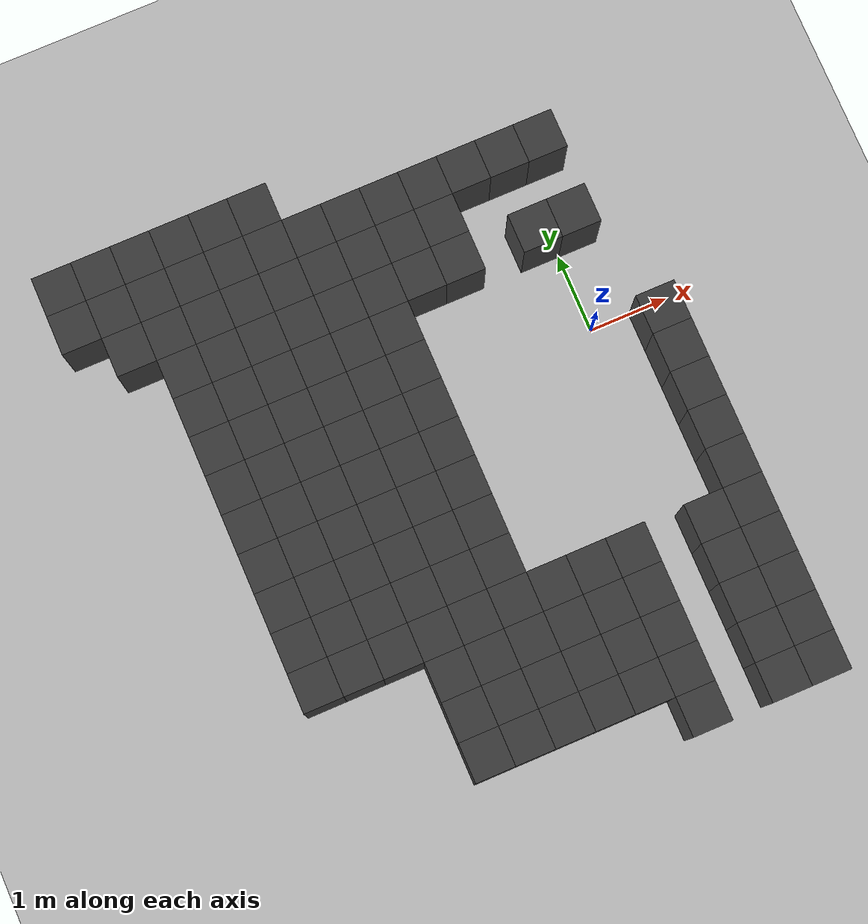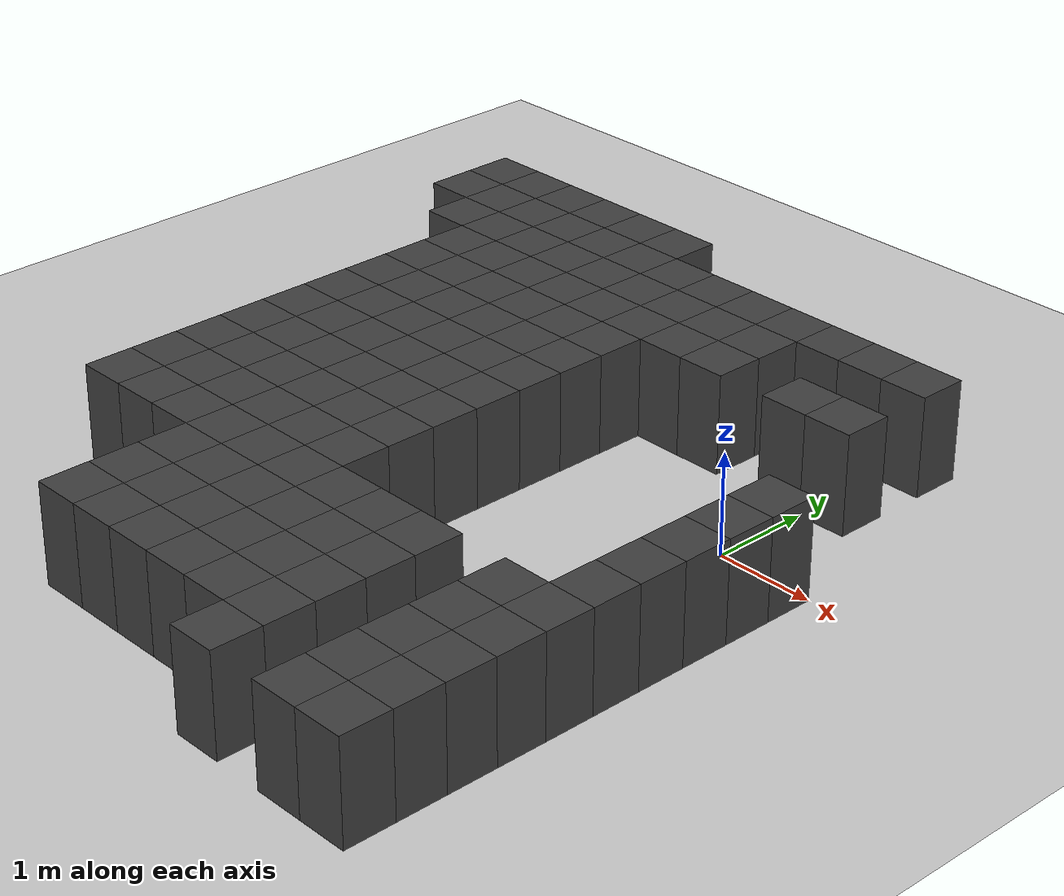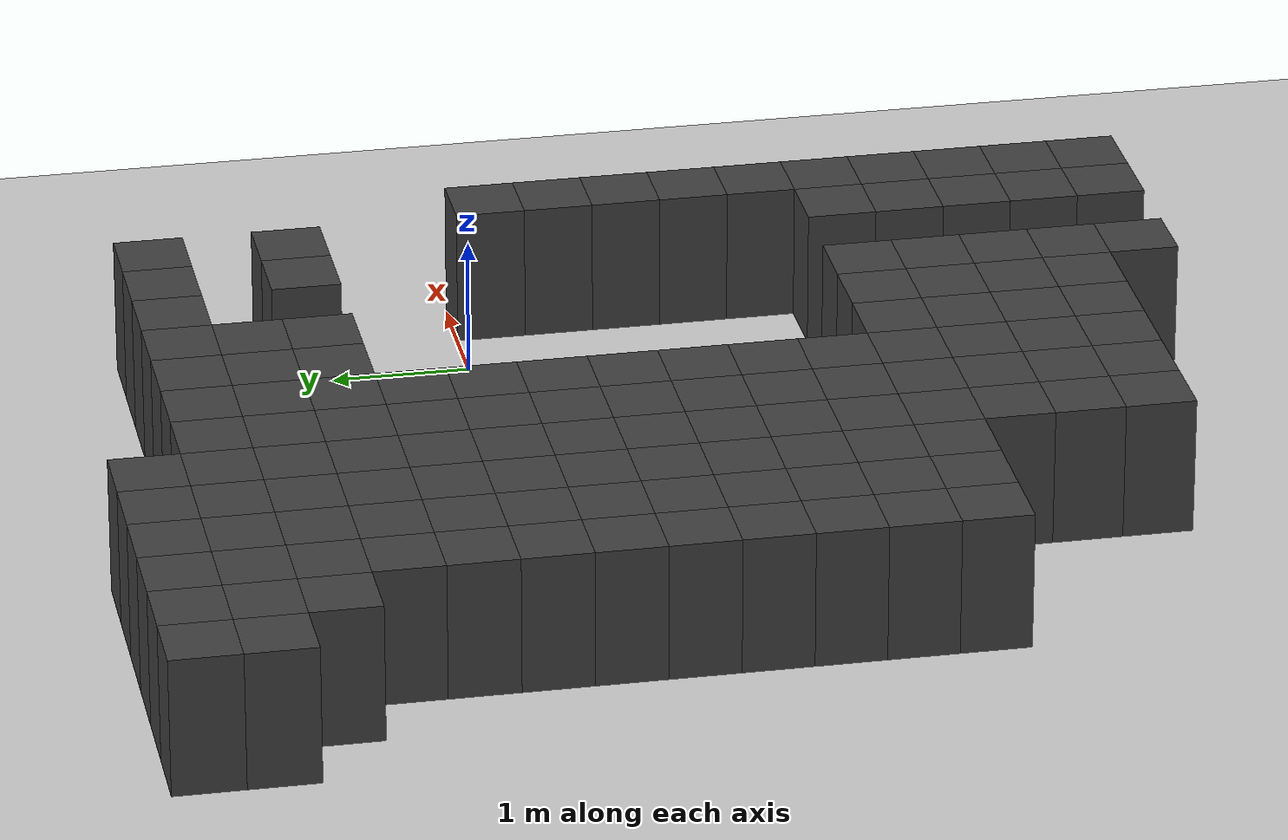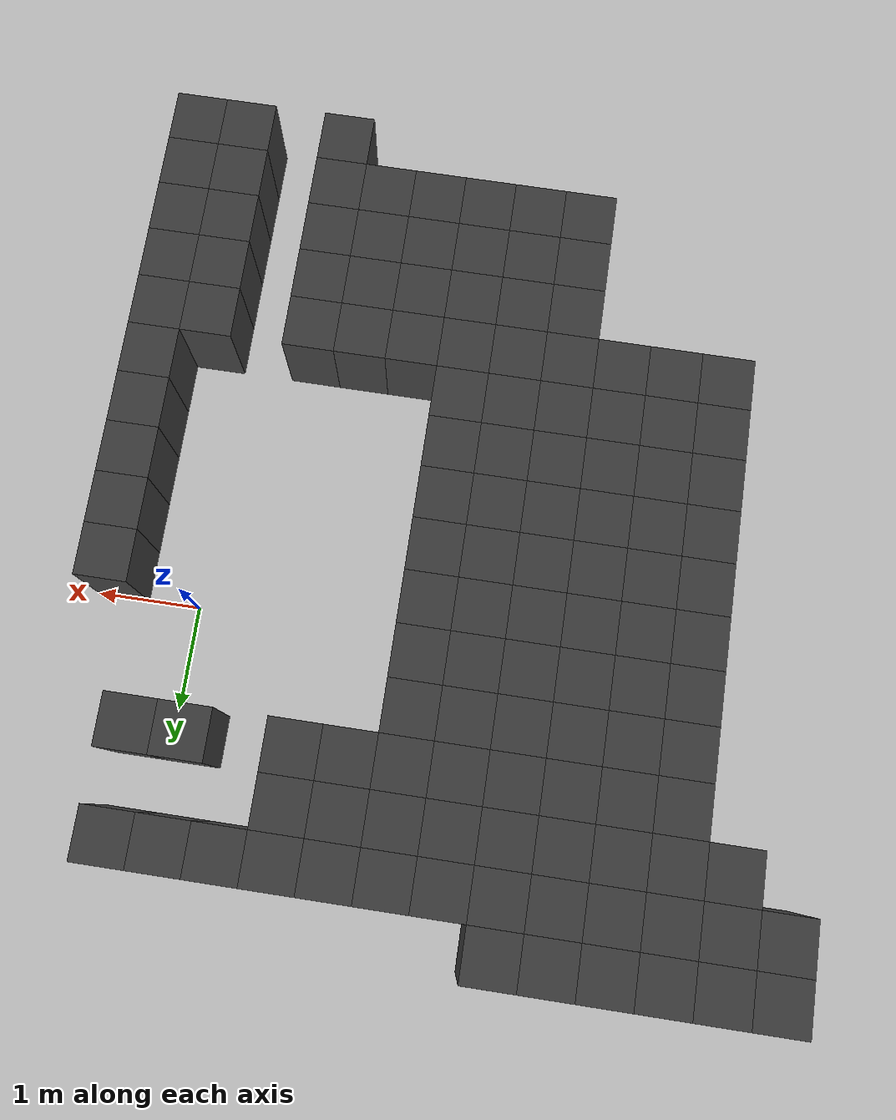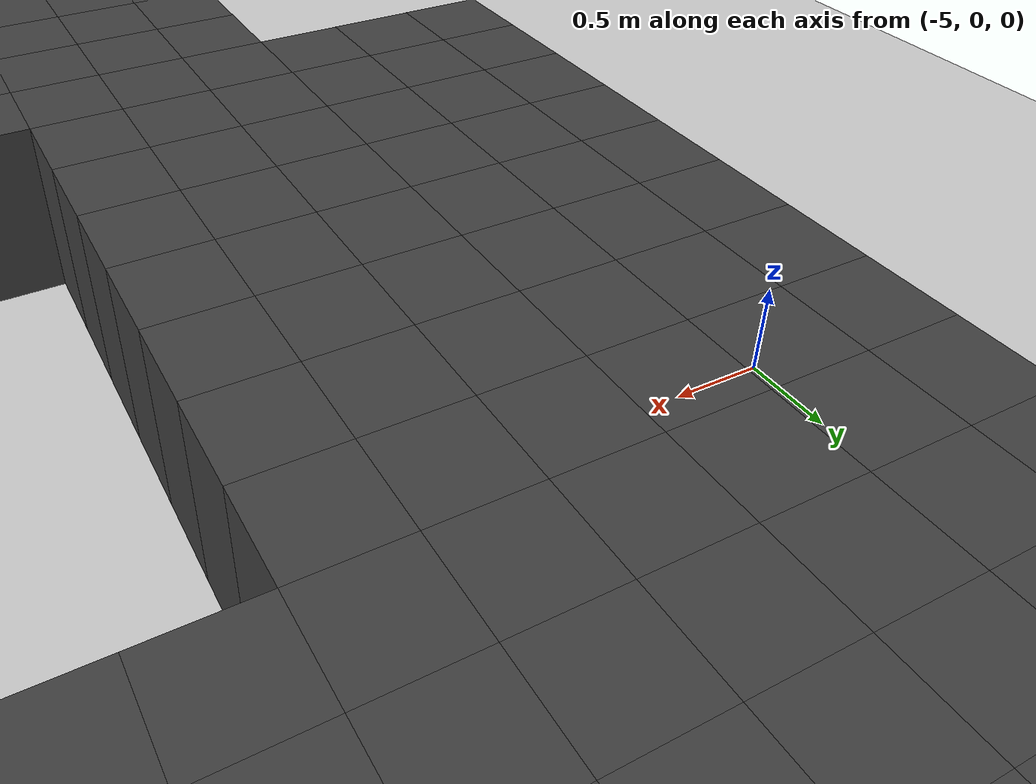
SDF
<sdf version="1.7">
 <world name="map_12818">
  <model name="ground_plane">
   <static>true</static>
   <link name="link">
    <collision name="collision">
     <geometry><plane><normal>0 0 1</normal><size>200 200</size></plane></geometry>
    </collision>
    <visual name="visual">
     <geometry><plane><normal>0 0 1</normal><size>200 200</size></plane></geometry>
     <material><ambient>0.8 0.8 0.8 1</ambient><diffuse>0.8 0.8 0.8 1</diffuse></material>
    </visual>
   </link>
  </model>
  <model name="maze_environment">
   <static>true</static>
   <link name="wall_895">
    <pose>-5.750 2.750 0.500 0 0 0</pose>
    <collision name="col"><geometry><box><size>0.5 0.5 1.0</size></box></geometry></collision>
    <visual name="vis">
     <geometry><box><size>0.5 0.5 1.0</size></box></geometry>
     <material><ambient>0.15 0.15 0.15 1</ambient><diffuse>0.25 0.25 0.25 1</diffuse></material>
    </visual>
   </link>
   <link name="wall_896">
    <pose>-5.250 2.750 0.500 0 0 0</pose>
    <collision name="col"><geometry><box><size>0.5 0.5 1.0</size></box></geometry></collision>
    <visual name="vis">
     <geometry><box><size>0.5 0.5 1.0</size></box></geometry>
     <material><ambient>0.15 0.15 0.15 1</ambient><diffuse>0.25 0.25 0.25 1</diffuse></material>
    </visual>
   </link>
   <link name="wall_897">
    <pose>-4.750 2.750 0.500 0 0 0</pose>
    <collision name="col"><geometry><box><size>0.5 0.5 1.0</size></box></geometry></collision>
    <visual name="vis">
     <geometry><box><size>0.5 0.5 1.0</size></box></geometry>
     <material><ambient>0.15 0.15 0.15 1</ambient><diffuse>0.25 0.25 0.25 1</diffuse></material>
    </visual>
   </link>
   <link name="wall_898">
    <pose>-4.250 2.750 0.500 0 0 0</pose>
    <collision name="col"><geometry><box><size>0.5 0.5 1.0</size></box></geometry></collision>
    <visual name="vis">
     <geometry><box><size>0.5 0.5 1.0</size></box></geometry>
     <material><ambient>0.15 0.15 0.15 1</ambient><diffuse>0.25 0.25 0.25 1</diffuse></material>
    </visual>
   </link>
   <link name="wall_899">
    <pose>-3.750 2.750 0.500 0 0 0</pose>
    <collision name="col"><geometry><box><size>0.5 0.5 1.0</size></box></geometry></collision>
    <visual name="vis">
     <geometry><box><size>0.5 0.5 1.0</size></box></geometry>
     <material><ambient>0.15 0.15 0.15 1</ambient><diffuse>0.25 0.25 0.25 1</diffuse></material>
    </visual>
   </link>
   <link name="wall_900">
    <pose>-3.250 2.750 0.500 0 0 0</pose>
    <collision name="col"><geometry><box><size>0.5 0.5 1.0</size></box></geometry></collision>
    <visual name="vis">
     <geometry><box><size>0.5 0.5 1.0</size></box></geometry>
     <material><ambient>0.15 0.15 0.15 1</ambient><diffuse>0.25 0.25 0.25 1</diffuse></material>
    </visual>
   </link>
   <link name="wall_936">
    <pose>-5.750 2.250 0.500 0 0 0</pose>
    <collision name="col"><geometry><box><size>0.5 0.5 1.0</size></box></geometry></collision>
    <visual name="vis">
     <geometry><box><size>0.5 0.5 1.0</size></box></geometry>
     <material><ambient>0.15 0.15 0.15 1</ambient><diffuse>0.25 0.25 0.25 1</diffuse></material>
    </visual>
   </link>
   <link name="wall_937">
    <pose>-5.250 2.250 0.500 0 0 0</pose>
    <collision name="col"><geometry><box><size>0.5 0.5 1.0</size></box></geometry></collision>
    <visual name="vis">
     <geometry><box><size>0.5 0.5 1.0</size></box></geometry>
     <material><ambient>0.15 0.15 0.15 1</ambient><diffuse>0.25 0.25 0.25 1</diffuse></material>
    </visual>
   </link>
   <link name="wall_938">
    <pose>-4.750 2.250 0.500 0 0 0</pose>
    <collision name="col"><geometry><box><size>0.5 0.5 1.0</size></box></geometry></collision>
    <visual name="vis">
     <geometry><box><size>0.5 0.5 1.0</size></box></geometry>
     <material><ambient>0.15 0.15 0.15 1</ambient><diffuse>0.25 0.25 0.25 1</diffuse></material>
    </visual>
   </link>
   <link name="wall_939">
    <pose>-4.250 2.250 0.500 0 0 0</pose>
    <collision name="col"><geometry><box><size>0.5 0.5 1.0</size></box></geometry></collision>
    <visual name="vis">
     <geometry><box><size>0.5 0.5 1.0</size></box></geometry>
     <material><ambient>0.15 0.15 0.15 1</ambient><diffuse>0.25 0.25 0.25 1</diffuse></material>
    </visual>
   </link>
   <link name="wall_940">
    <pose>-3.750 2.250 0.500 0 0 0</pose>
    <collision name="col"><geometry><box><size>0.5 0.5 1.0</size></box></geometry></collision>
    <visual name="vis">
     <geometry><box><size>0.5 0.5 1.0</size></box></geometry>
     <material><ambient>0.15 0.15 0.15 1</ambient><diffuse>0.25 0.25 0.25 1</diffuse></material>
    </visual>
   </link>
   <link name="wall_941">
    <pose>-3.250 2.250 0.500 0 0 0</pose>
    <collision name="col"><geometry><box><size>0.5 0.5 1.0</size></box></geometry></collision>
    <visual name="vis">
     <geometry><box><size>0.5 0.5 1.0</size></box></geometry>
     <material><ambient>0.15 0.15 0.15 1</ambient><diffuse>0.25 0.25 0.25 1</diffuse></material>
    </visual>
   </link>
   <link name="wall_942">
    <pose>-2.750 2.250 0.500 0 0 0</pose>
    <collision name="col"><geometry><box><size>0.5 0.5 1.0</size></box></geometry></collision>
    <visual name="vis">
     <geometry><box><size>0.5 0.5 1.0</size></box></geometry>
     <material><ambient>0.15 0.15 0.15 1</ambient><diffuse>0.25 0.25 0.25 1</diffuse></material>
    </visual>
   </link>
   <link name="wall_943">
    <pose>-2.250 2.250 0.500 0 0 0</pose>
    <collision name="col"><geometry><box><size>0.5 0.5 1.0</size></box></geometry></collision>
    <visual name="vis">
     <geometry><box><size>0.5 0.5 1.0</size></box></geometry>
     <material><ambient>0.15 0.15 0.15 1</ambient><diffuse>0.25 0.25 0.25 1</diffuse></material>
    </visual>
   </link>
   <link name="wall_944">
    <pose>-1.750 2.250 0.500 0 0 0</pose>
    <collision name="col"><geometry><box><size>0.5 0.5 1.0</size></box></geometry></collision>
    <visual name="vis">
     <geometry><box><size>0.5 0.5 1.0</size></box></geometry>
     <material><ambient>0.15 0.15 0.15 1</ambient><diffuse>0.25 0.25 0.25 1</diffuse></material>
    </visual>
   </link>
   <link name="wall_945">
    <pose>-1.250 2.250 0.500 0 0 0</pose>
    <collision name="col"><geometry><box><size>0.5 0.5 1.0</size></box></geometry></collision>
    <visual name="vis">
     <geometry><box><size>0.5 0.5 1.0</size></box></geometry>
     <material><ambient>0.15 0.15 0.15 1</ambient><diffuse>0.25 0.25 0.25 1</diffuse></material>
    </visual>
   </link>
   <link name="wall_946">
    <pose>-0.750 2.250 0.500 0 0 0</pose>
    <collision name="col"><geometry><box><size>0.5 0.5 1.0</size></box></geometry></collision>
    <visual name="vis">
     <geometry><box><size>0.5 0.5 1.0</size></box></geometry>
     <material><ambient>0.15 0.15 0.15 1</ambient><diffuse>0.25 0.25 0.25 1</diffuse></material>
    </visual>
   </link>
   <link name="wall_947">
    <pose>-0.250 2.250 0.500 0 0 0</pose>
    <collision name="col"><geometry><box><size>0.5 0.5 1.0</size></box></geometry></collision>
    <visual name="vis">
     <geometry><box><size>0.5 0.5 1.0</size></box></geometry>
     <material><ambient>0.15 0.15 0.15 1</ambient><diffuse>0.25 0.25 0.25 1</diffuse></material>
    </visual>
   </link>
   <link name="wall_948">
    <pose>0.250 2.250 0.500 0 0 0</pose>
    <collision name="col"><geometry><box><size>0.5 0.5 1.0</size></box></geometry></collision>
    <visual name="vis">
     <geometry><box><size>0.5 0.5 1.0</size></box></geometry>
     <material><ambient>0.15 0.15 0.15 1</ambient><diffuse>0.25 0.25 0.25 1</diffuse></material>
    </visual>
   </link>
   <link name="wall_978">
    <pose>-5.250 1.750 0.500 0 0 0</pose>
    <collision name="col"><geometry><box><size>0.5 0.5 1.0</size></box></geometry></collision>
    <visual name="vis">
     <geometry><box><size>0.5 0.5 1.0</size></box></geometry>
     <material><ambient>0.15 0.15 0.15 1</ambient><diffuse>0.25 0.25 0.25 1</diffuse></material>
    </visual>
   </link>
   <link name="wall_979">
    <pose>-4.750 1.750 0.500 0 0 0</pose>
    <collision name="col"><geometry><box><size>0.5 0.5 1.0</size></box></geometry></collision>
    <visual name="vis">
     <geometry><box><size>0.5 0.5 1.0</size></box></geometry>
     <material><ambient>0.15 0.15 0.15 1</ambient><diffuse>0.25 0.25 0.25 1</diffuse></material>
    </visual>
   </link>
   <link name="wall_980">
    <pose>-4.250 1.750 0.500 0 0 0</pose>
    <collision name="col"><geometry><box><size>0.5 0.5 1.0</size></box></geometry></collision>
    <visual name="vis">
     <geometry><box><size>0.5 0.5 1.0</size></box></geometry>
     <material><ambient>0.15 0.15 0.15 1</ambient><diffuse>0.25 0.25 0.25 1</diffuse></material>
    </visual>
   </link>
   <link name="wall_981">
    <pose>-3.750 1.750 0.500 0 0 0</pose>
    <collision name="col"><geometry><box><size>0.5 0.5 1.0</size></box></geometry></collision>
    <visual name="vis">
     <geometry><box><size>0.5 0.5 1.0</size></box></geometry>
     <material><ambient>0.15 0.15 0.15 1</ambient><diffuse>0.25 0.25 0.25 1</diffuse></material>
    </visual>
   </link>
   <link name="wall_982">
    <pose>-3.250 1.750 0.500 0 0 0</pose>
    <collision name="col"><geometry><box><size>0.5 0.5 1.0</size></box></geometry></collision>
    <visual name="vis">
     <geometry><box><size>0.5 0.5 1.0</size></box></geometry>
     <material><ambient>0.15 0.15 0.15 1</ambient><diffuse>0.25 0.25 0.25 1</diffuse></material>
    </visual>
   </link>
   <link name="wall_983">
    <pose>-2.750 1.750 0.500 0 0 0</pose>
    <collision name="col"><geometry><box><size>0.5 0.5 1.0</size></box></geometry></collision>
    <visual name="vis">
     <geometry><box><size>0.5 0.5 1.0</size></box></geometry>
     <material><ambient>0.15 0.15 0.15 1</ambient><diffuse>0.25 0.25 0.25 1</diffuse></material>
    </visual>
   </link>
   <link name="wall_984">
    <pose>-2.250 1.750 0.500 0 0 0</pose>
    <collision name="col"><geometry><box><size>0.5 0.5 1.0</size></box></geometry></collision>
    <visual name="vis">
     <geometry><box><size>0.5 0.5 1.0</size></box></geometry>
     <material><ambient>0.15 0.15 0.15 1</ambient><diffuse>0.25 0.25 0.25 1</diffuse></material>
    </visual>
   </link>
   <link name="wall_985">
    <pose>-1.750 1.750 0.500 0 0 0</pose>
    <collision name="col"><geometry><box><size>0.5 0.5 1.0</size></box></geometry></collision>
    <visual name="vis">
     <geometry><box><size>0.5 0.5 1.0</size></box></geometry>
     <material><ambient>0.15 0.15 0.15 1</ambient><diffuse>0.25 0.25 0.25 1</diffuse></material>
    </visual>
   </link>
   <link name="wall_986">
    <pose>-1.250 1.750 0.500 0 0 0</pose>
    <collision name="col"><geometry><box><size>0.5 0.5 1.0</size></box></geometry></collision>
    <visual name="vis">
     <geometry><box><size>0.5 0.5 1.0</size></box></geometry>
     <material><ambient>0.15 0.15 0.15 1</ambient><diffuse>0.25 0.25 0.25 1</diffuse></material>
    </visual>
   </link>
   <link name="wall_1011">
    <pose>-4.750 1.250 0.500 0 0 0</pose>
    <collision name="col"><geometry><box><size>0.5 0.5 1.0</size></box></geometry></collision>
    <visual name="vis">
     <geometry><box><size>0.5 0.5 1.0</size></box></geometry>
     <material><ambient>0.15 0.15 0.15 1</ambient><diffuse>0.25 0.25 0.25 1</diffuse></material>
    </visual>
   </link>
   <link name="wall_1012">
    <pose>-4.250 1.250 0.500 0 0 0</pose>
    <collision name="col"><geometry><box><size>0.5 0.5 1.0</size></box></geometry></collision>
    <visual name="vis">
     <geometry><box><size>0.5 0.5 1.0</size></box></geometry>
     <material><ambient>0.15 0.15 0.15 1</ambient><diffuse>0.25 0.25 0.25 1</diffuse></material>
    </visual>
   </link>
   <link name="wall_1013">
    <pose>-3.750 1.250 0.500 0 0 0</pose>
    <collision name="col"><geometry><box><size>0.5 0.5 1.0</size></box></geometry></collision>
    <visual name="vis">
     <geometry><box><size>0.5 0.5 1.0</size></box></geometry>
     <material><ambient>0.15 0.15 0.15 1</ambient><diffuse>0.25 0.25 0.25 1</diffuse></material>
    </visual>
   </link>
   <link name="wall_1014">
    <pose>-3.250 1.250 0.500 0 0 0</pose>
    <collision name="col"><geometry><box><size>0.5 0.5 1.0</size></box></geometry></collision>
    <visual name="vis">
     <geometry><box><size>0.5 0.5 1.0</size></box></geometry>
     <material><ambient>0.15 0.15 0.15 1</ambient><diffuse>0.25 0.25 0.25 1</diffuse></material>
    </visual>
   </link>
   <link name="wall_1015">
    <pose>-2.750 1.250 0.500 0 0 0</pose>
    <collision name="col"><geometry><box><size>0.5 0.5 1.0</size></box></geometry></collision>
    <visual name="vis">
     <geometry><box><size>0.5 0.5 1.0</size></box></geometry>
     <material><ambient>0.15 0.15 0.15 1</ambient><diffuse>0.25 0.25 0.25 1</diffuse></material>
    </visual>
   </link>
   <link name="wall_1016">
    <pose>-2.250 1.250 0.500 0 0 0</pose>
    <collision name="col"><geometry><box><size>0.5 0.5 1.0</size></box></geometry></collision>
    <visual name="vis">
     <geometry><box><size>0.5 0.5 1.0</size></box></geometry>
     <material><ambient>0.15 0.15 0.15 1</ambient><diffuse>0.25 0.25 0.25 1</diffuse></material>
    </visual>
   </link>
   <link name="wall_1017">
    <pose>-1.750 1.250 0.500 0 0 0</pose>
    <collision name="col"><geometry><box><size>0.5 0.5 1.0</size></box></geometry></collision>
    <visual name="vis">
     <geometry><box><size>0.5 0.5 1.0</size></box></geometry>
     <material><ambient>0.15 0.15 0.15 1</ambient><diffuse>0.25 0.25 0.25 1</diffuse></material>
    </visual>
   </link>
   <link name="wall_1018">
    <pose>-1.250 1.250 0.500 0 0 0</pose>
    <collision name="col"><geometry><box><size>0.5 0.5 1.0</size></box></geometry></collision>
    <visual name="vis">
     <geometry><box><size>0.5 0.5 1.0</size></box></geometry>
     <material><ambient>0.15 0.15 0.15 1</ambient><diffuse>0.25 0.25 0.25 1</diffuse></material>
    </visual>
   </link>
   <link name="wall_1019">
    <pose>-0.250 1.250 0.500 0 0 0</pose>
    <collision name="col"><geometry><box><size>0.5 0.5 1.0</size></box></geometry></collision>
    <visual name="vis">
     <geometry><box><size>0.5 0.5 1.0</size></box></geometry>
     <material><ambient>0.15 0.15 0.15 1</ambient><diffuse>0.25 0.25 0.25 1</diffuse></material>
    </visual>
   </link>
   <link name="wall_1020">
    <pose>0.250 1.250 0.500 0 0 0</pose>
    <collision name="col"><geometry><box><size>0.5 0.5 1.0</size></box></geometry></collision>
    <visual name="vis">
     <geometry><box><size>0.5 0.5 1.0</size></box></geometry>
     <material><ambient>0.15 0.15 0.15 1</ambient><diffuse>0.25 0.25 0.25 1</diffuse></material>
    </visual>
   </link>
   <link name="wall_1045">
    <pose>-4.750 0.750 0.500 0 0 0</pose>
    <collision name="col"><geometry><box><size>0.5 0.5 1.0</size></box></geometry></collision>
    <visual name="vis">
     <geometry><box><size>0.5 0.5 1.0</size></box></geometry>
     <material><ambient>0.15 0.15 0.15 1</ambient><diffuse>0.25 0.25 0.25 1</diffuse></material>
    </visual>
   </link>
   <link name="wall_1046">
    <pose>-4.250 0.750 0.500 0 0 0</pose>
    <collision name="col"><geometry><box><size>0.5 0.5 1.0</size></box></geometry></collision>
    <visual name="vis">
     <geometry><box><size>0.5 0.5 1.0</size></box></geometry>
     <material><ambient>0.15 0.15 0.15 1</ambient><diffuse>0.25 0.25 0.25 1</diffuse></material>
    </visual>
   </link>
   <link name="wall_1047">
    <pose>-3.750 0.750 0.500 0 0 0</pose>
    <collision name="col"><geometry><box><size>0.5 0.5 1.0</size></box></geometry></collision>
    <visual name="vis">
     <geometry><box><size>0.5 0.5 1.0</size></box></geometry>
     <material><ambient>0.15 0.15 0.15 1</ambient><diffuse>0.25 0.25 0.25 1</diffuse></material>
    </visual>
   </link>
   <link name="wall_1048">
    <pose>-3.250 0.750 0.500 0 0 0</pose>
    <collision name="col"><geometry><box><size>0.5 0.5 1.0</size></box></geometry></collision>
    <visual name="vis">
     <geometry><box><size>0.5 0.5 1.0</size></box></geometry>
     <material><ambient>0.15 0.15 0.15 1</ambient><diffuse>0.25 0.25 0.25 1</diffuse></material>
    </visual>
   </link>
   <link name="wall_1049">
    <pose>-2.750 0.750 0.500 0 0 0</pose>
    <collision name="col"><geometry><box><size>0.5 0.5 1.0</size></box></geometry></collision>
    <visual name="vis">
     <geometry><box><size>0.5 0.5 1.0</size></box></geometry>
     <material><ambient>0.15 0.15 0.15 1</ambient><diffuse>0.25 0.25 0.25 1</diffuse></material>
    </visual>
   </link>
   <link name="wall_1050">
    <pose>-2.250 0.750 0.500 0 0 0</pose>
    <collision name="col"><geometry><box><size>0.5 0.5 1.0</size></box></geometry></collision>
    <visual name="vis">
     <geometry><box><size>0.5 0.5 1.0</size></box></geometry>
     <material><ambient>0.15 0.15 0.15 1</ambient><diffuse>0.25 0.25 0.25 1</diffuse></material>
    </visual>
   </link>
   <link name="wall_1075">
    <pose>-4.750 0.250 0.500 0 0 0</pose>
    <collision name="col"><geometry><box><size>0.5 0.5 1.0</size></box></geometry></collision>
    <visual name="vis">
     <geometry><box><size>0.5 0.5 1.0</size></box></geometry>
     <material><ambient>0.15 0.15 0.15 1</ambient><diffuse>0.25 0.25 0.25 1</diffuse></material>
    </visual>
   </link>
   <link name="wall_1076">
    <pose>-4.250 0.250 0.500 0 0 0</pose>
    <collision name="col"><geometry><box><size>0.5 0.5 1.0</size></box></geometry></collision>
    <visual name="vis">
     <geometry><box><size>0.5 0.5 1.0</size></box></geometry>
     <material><ambient>0.15 0.15 0.15 1</ambient><diffuse>0.25 0.25 0.25 1</diffuse></material>
    </visual>
   </link>
   <link name="wall_1077">
    <pose>-3.750 0.250 0.500 0 0 0</pose>
    <collision name="col"><geometry><box><size>0.5 0.5 1.0</size></box></geometry></collision>
    <visual name="vis">
     <geometry><box><size>0.5 0.5 1.0</size></box></geometry>
     <material><ambient>0.15 0.15 0.15 1</ambient><diffuse>0.25 0.25 0.25 1</diffuse></material>
    </visual>
   </link>
   <link name="wall_1078">
    <pose>-3.250 0.250 0.500 0 0 0</pose>
    <collision name="col"><geometry><box><size>0.5 0.5 1.0</size></box></geometry></collision>
    <visual name="vis">
     <geometry><box><size>0.5 0.5 1.0</size></box></geometry>
     <material><ambient>0.15 0.15 0.15 1</ambient><diffuse>0.25 0.25 0.25 1</diffuse></material>
    </visual>
   </link>
   <link name="wall_1079">
    <pose>-2.750 0.250 0.500 0 0 0</pose>
    <collision name="col"><geometry><box><size>0.5 0.5 1.0</size></box></geometry></collision>
    <visual name="vis">
     <geometry><box><size>0.5 0.5 1.0</size></box></geometry>
     <material><ambient>0.15 0.15 0.15 1</ambient><diffuse>0.25 0.25 0.25 1</diffuse></material>
    </visual>
   </link>
   <link name="wall_1080">
    <pose>-2.250 0.250 0.500 0 0 0</pose>
    <collision name="col"><geometry><box><size>0.5 0.5 1.0</size></box></geometry></collision>
    <visual name="vis">
     <geometry><box><size>0.5 0.5 1.0</size></box></geometry>
     <material><ambient>0.15 0.15 0.15 1</ambient><diffuse>0.25 0.25 0.25 1</diffuse></material>
    </visual>
   </link>
   <link name="wall_1105">
    <pose>-4.750 -0.250 0.500 0 0 0</pose>
    <collision name="col"><geometry><box><size>0.5 0.5 1.0</size></box></geometry></collision>
    <visual name="vis">
     <geometry><box><size>0.5 0.5 1.0</size></box></geometry>
     <material><ambient>0.15 0.15 0.15 1</ambient><diffuse>0.25 0.25 0.25 1</diffuse></material>
    </visual>
   </link>
   <link name="wall_1106">
    <pose>-4.250 -0.250 0.500 0 0 0</pose>
    <collision name="col"><geometry><box><size>0.5 0.5 1.0</size></box></geometry></collision>
    <visual name="vis">
     <geometry><box><size>0.5 0.5 1.0</size></box></geometry>
     <material><ambient>0.15 0.15 0.15 1</ambient><diffuse>0.25 0.25 0.25 1</diffuse></material>
    </visual>
   </link>
   <link name="wall_1107">
    <pose>-3.750 -0.250 0.500 0 0 0</pose>
    <collision name="col"><geometry><box><size>0.5 0.5 1.0</size></box></geometry></collision>
    <visual name="vis">
     <geometry><box><size>0.5 0.5 1.0</size></box></geometry>
     <material><ambient>0.15 0.15 0.15 1</ambient><diffuse>0.25 0.25 0.25 1</diffuse></material>
    </visual>
   </link>
   <link name="wall_1108">
    <pose>-3.250 -0.250 0.500 0 0 0</pose>
    <collision name="col"><geometry><box><size>0.5 0.5 1.0</size></box></geometry></collision>
    <visual name="vis">
     <geometry><box><size>0.5 0.5 1.0</size></box></geometry>
     <material><ambient>0.15 0.15 0.15 1</ambient><diffuse>0.25 0.25 0.25 1</diffuse></material>
    </visual>
   </link>
   <link name="wall_1109">
    <pose>-2.750 -0.250 0.500 0 0 0</pose>
    <collision name="col"><geometry><box><size>0.5 0.5 1.0</size></box></geometry></collision>
    <visual name="vis">
     <geometry><box><size>0.5 0.5 1.0</size></box></geometry>
     <material><ambient>0.15 0.15 0.15 1</ambient><diffuse>0.25 0.25 0.25 1</diffuse></material>
    </visual>
   </link>
   <link name="wall_1110">
    <pose>-2.250 -0.250 0.500 0 0 0</pose>
    <collision name="col"><geometry><box><size>0.5 0.5 1.0</size></box></geometry></collision>
    <visual name="vis">
     <geometry><box><size>0.5 0.5 1.0</size></box></geometry>
     <material><ambient>0.15 0.15 0.15 1</ambient><diffuse>0.25 0.25 0.25 1</diffuse></material>
    </visual>
   </link>
   <link name="wall_1111">
    <pose>0.750 -0.250 0.500 0 0 0</pose>
    <collision name="col"><geometry><box><size>0.5 0.5 1.0</size></box></geometry></collision>
    <visual name="vis">
     <geometry><box><size>0.5 0.5 1.0</size></box></geometry>
     <material><ambient>0.15 0.15 0.15 1</ambient><diffuse>0.25 0.25 0.25 1</diffuse></material>
    </visual>
   </link>
   <link name="wall_1148">
    <pose>-4.750 -0.750 0.500 0 0 0</pose>
    <collision name="col"><geometry><box><size>0.5 0.5 1.0</size></box></geometry></collision>
    <visual name="vis">
     <geometry><box><size>0.5 0.5 1.0</size></box></geometry>
     <material><ambient>0.15 0.15 0.15 1</ambient><diffuse>0.25 0.25 0.25 1</diffuse></material>
    </visual>
   </link>
   <link name="wall_1149">
    <pose>-4.250 -0.750 0.500 0 0 0</pose>
    <collision name="col"><geometry><box><size>0.5 0.5 1.0</size></box></geometry></collision>
    <visual name="vis">
     <geometry><box><size>0.5 0.5 1.0</size></box></geometry>
     <material><ambient>0.15 0.15 0.15 1</ambient><diffuse>0.25 0.25 0.25 1</diffuse></material>
    </visual>
   </link>
   <link name="wall_1150">
    <pose>-3.750 -0.750 0.500 0 0 0</pose>
    <collision name="col"><geometry><box><size>0.5 0.5 1.0</size></box></geometry></collision>
    <visual name="vis">
     <geometry><box><size>0.5 0.5 1.0</size></box></geometry>
     <material><ambient>0.15 0.15 0.15 1</ambient><diffuse>0.25 0.25 0.25 1</diffuse></material>
    </visual>
   </link>
   <link name="wall_1151">
    <pose>-3.250 -0.750 0.500 0 0 0</pose>
    <collision name="col"><geometry><box><size>0.5 0.5 1.0</size></box></geometry></collision>
    <visual name="vis">
     <geometry><box><size>0.5 0.5 1.0</size></box></geometry>
     <material><ambient>0.15 0.15 0.15 1</ambient><diffuse>0.25 0.25 0.25 1</diffuse></material>
    </visual>
   </link>
   <link name="wall_1152">
    <pose>-2.750 -0.750 0.500 0 0 0</pose>
    <collision name="col"><geometry><box><size>0.5 0.5 1.0</size></box></geometry></collision>
    <visual name="vis">
     <geometry><box><size>0.5 0.5 1.0</size></box></geometry>
     <material><ambient>0.15 0.15 0.15 1</ambient><diffuse>0.25 0.25 0.25 1</diffuse></material>
    </visual>
   </link>
   <link name="wall_1153">
    <pose>-2.250 -0.750 0.500 0 0 0</pose>
    <collision name="col"><geometry><box><size>0.5 0.5 1.0</size></box></geometry></collision>
    <visual name="vis">
     <geometry><box><size>0.5 0.5 1.0</size></box></geometry>
     <material><ambient>0.15 0.15 0.15 1</ambient><diffuse>0.25 0.25 0.25 1</diffuse></material>
    </visual>
   </link>
   <link name="wall_1154">
    <pose>0.750 -0.750 0.500 0 0 0</pose>
    <collision name="col"><geometry><box><size>0.5 0.5 1.0</size></box></geometry></collision>
    <visual name="vis">
     <geometry><box><size>0.5 0.5 1.0</size></box></geometry>
     <material><ambient>0.15 0.15 0.15 1</ambient><diffuse>0.25 0.25 0.25 1</diffuse></material>
    </visual>
   </link>
   <link name="wall_1191">
    <pose>-4.750 -1.250 0.500 0 0 0</pose>
    <collision name="col"><geometry><box><size>0.5 0.5 1.0</size></box></geometry></collision>
    <visual name="vis">
     <geometry><box><size>0.5 0.5 1.0</size></box></geometry>
     <material><ambient>0.15 0.15 0.15 1</ambient><diffuse>0.25 0.25 0.25 1</diffuse></material>
    </visual>
   </link>
   <link name="wall_1192">
    <pose>-4.250 -1.250 0.500 0 0 0</pose>
    <collision name="col"><geometry><box><size>0.5 0.5 1.0</size></box></geometry></collision>
    <visual name="vis">
     <geometry><box><size>0.5 0.5 1.0</size></box></geometry>
     <material><ambient>0.15 0.15 0.15 1</ambient><diffuse>0.25 0.25 0.25 1</diffuse></material>
    </visual>
   </link>
   <link name="wall_1193">
    <pose>-3.750 -1.250 0.500 0 0 0</pose>
    <collision name="col"><geometry><box><size>0.5 0.5 1.0</size></box></geometry></collision>
    <visual name="vis">
     <geometry><box><size>0.5 0.5 1.0</size></box></geometry>
     <material><ambient>0.15 0.15 0.15 1</ambient><diffuse>0.25 0.25 0.25 1</diffuse></material>
    </visual>
   </link>
   <link name="wall_1194">
    <pose>-3.250 -1.250 0.500 0 0 0</pose>
    <collision name="col"><geometry><box><size>0.5 0.5 1.0</size></box></geometry></collision>
    <visual name="vis">
     <geometry><box><size>0.5 0.5 1.0</size></box></geometry>
     <material><ambient>0.15 0.15 0.15 1</ambient><diffuse>0.25 0.25 0.25 1</diffuse></material>
    </visual>
   </link>
   <link name="wall_1195">
    <pose>-2.750 -1.250 0.500 0 0 0</pose>
    <collision name="col"><geometry><box><size>0.5 0.5 1.0</size></box></geometry></collision>
    <visual name="vis">
     <geometry><box><size>0.5 0.5 1.0</size></box></geometry>
     <material><ambient>0.15 0.15 0.15 1</ambient><diffuse>0.25 0.25 0.25 1</diffuse></material>
    </visual>
   </link>
   <link name="wall_1196">
    <pose>-2.250 -1.250 0.500 0 0 0</pose>
    <collision name="col"><geometry><box><size>0.5 0.5 1.0</size></box></geometry></collision>
    <visual name="vis">
     <geometry><box><size>0.5 0.5 1.0</size></box></geometry>
     <material><ambient>0.15 0.15 0.15 1</ambient><diffuse>0.25 0.25 0.25 1</diffuse></material>
    </visual>
   </link>
   <link name="wall_1197">
    <pose>0.750 -1.250 0.500 0 0 0</pose>
    <collision name="col"><geometry><box><size>0.5 0.5 1.0</size></box></geometry></collision>
    <visual name="vis">
     <geometry><box><size>0.5 0.5 1.0</size></box></geometry>
     <material><ambient>0.15 0.15 0.15 1</ambient><diffuse>0.25 0.25 0.25 1</diffuse></material>
    </visual>
   </link>
   <link name="wall_1228">
    <pose>-4.750 -1.750 0.500 0 0 0</pose>
    <collision name="col"><geometry><box><size>0.5 0.5 1.0</size></box></geometry></collision>
    <visual name="vis">
     <geometry><box><size>0.5 0.5 1.0</size></box></geometry>
     <material><ambient>0.15 0.15 0.15 1</ambient><diffuse>0.25 0.25 0.25 1</diffuse></material>
    </visual>
   </link>
   <link name="wall_1229">
    <pose>-4.250 -1.750 0.500 0 0 0</pose>
    <collision name="col"><geometry><box><size>0.5 0.5 1.0</size></box></geometry></collision>
    <visual name="vis">
     <geometry><box><size>0.5 0.5 1.0</size></box></geometry>
     <material><ambient>0.15 0.15 0.15 1</ambient><diffuse>0.25 0.25 0.25 1</diffuse></material>
    </visual>
   </link>
   <link name="wall_1230">
    <pose>-3.750 -1.750 0.500 0 0 0</pose>
    <collision name="col"><geometry><box><size>0.5 0.5 1.0</size></box></geometry></collision>
    <visual name="vis">
     <geometry><box><size>0.5 0.5 1.0</size></box></geometry>
     <material><ambient>0.15 0.15 0.15 1</ambient><diffuse>0.25 0.25 0.25 1</diffuse></material>
    </visual>
   </link>
   <link name="wall_1231">
    <pose>-3.250 -1.750 0.500 0 0 0</pose>
    <collision name="col"><geometry><box><size>0.5 0.5 1.0</size></box></geometry></collision>
    <visual name="vis">
     <geometry><box><size>0.5 0.5 1.0</size></box></geometry>
     <material><ambient>0.15 0.15 0.15 1</ambient><diffuse>0.25 0.25 0.25 1</diffuse></material>
    </visual>
   </link>
   <link name="wall_1232">
    <pose>-2.750 -1.750 0.500 0 0 0</pose>
    <collision name="col"><geometry><box><size>0.5 0.5 1.0</size></box></geometry></collision>
    <visual name="vis">
     <geometry><box><size>0.5 0.5 1.0</size></box></geometry>
     <material><ambient>0.15 0.15 0.15 1</ambient><diffuse>0.25 0.25 0.25 1</diffuse></material>
    </visual>
   </link>
   <link name="wall_1233">
    <pose>-2.250 -1.750 0.500 0 0 0</pose>
    <collision name="col"><geometry><box><size>0.5 0.5 1.0</size></box></geometry></collision>
    <visual name="vis">
     <geometry><box><size>0.5 0.5 1.0</size></box></geometry>
     <material><ambient>0.15 0.15 0.15 1</ambient><diffuse>0.25 0.25 0.25 1</diffuse></material>
    </visual>
   </link>
   <link name="wall_1234">
    <pose>0.750 -1.750 0.500 0 0 0</pose>
    <collision name="col"><geometry><box><size>0.5 0.5 1.0</size></box></geometry></collision>
    <visual name="vis">
     <geometry><box><size>0.5 0.5 1.0</size></box></geometry>
     <material><ambient>0.15 0.15 0.15 1</ambient><diffuse>0.25 0.25 0.25 1</diffuse></material>
    </visual>
   </link>
   <link name="wall_1265">
    <pose>-4.750 -2.250 0.500 0 0 0</pose>
    <collision name="col"><geometry><box><size>0.5 0.5 1.0</size></box></geometry></collision>
    <visual name="vis">
     <geometry><box><size>0.5 0.5 1.0</size></box></geometry>
     <material><ambient>0.15 0.15 0.15 1</ambient><diffuse>0.25 0.25 0.25 1</diffuse></material>
    </visual>
   </link>
   <link name="wall_1266">
    <pose>-4.250 -2.250 0.500 0 0 0</pose>
    <collision name="col"><geometry><box><size>0.5 0.5 1.0</size></box></geometry></collision>
    <visual name="vis">
     <geometry><box><size>0.5 0.5 1.0</size></box></geometry>
     <material><ambient>0.15 0.15 0.15 1</ambient><diffuse>0.25 0.25 0.25 1</diffuse></material>
    </visual>
   </link>
   <link name="wall_1267">
    <pose>-3.750 -2.250 0.500 0 0 0</pose>
    <collision name="col"><geometry><box><size>0.5 0.5 1.0</size></box></geometry></collision>
    <visual name="vis">
     <geometry><box><size>0.5 0.5 1.0</size></box></geometry>
     <material><ambient>0.15 0.15 0.15 1</ambient><diffuse>0.25 0.25 0.25 1</diffuse></material>
    </visual>
   </link>
   <link name="wall_1268">
    <pose>-3.250 -2.250 0.500 0 0 0</pose>
    <collision name="col"><geometry><box><size>0.5 0.5 1.0</size></box></geometry></collision>
    <visual name="vis">
     <geometry><box><size>0.5 0.5 1.0</size></box></geometry>
     <material><ambient>0.15 0.15 0.15 1</ambient><diffuse>0.25 0.25 0.25 1</diffuse></material>
    </visual>
   </link>
   <link name="wall_1269">
    <pose>-2.750 -2.250 0.500 0 0 0</pose>
    <collision name="col"><geometry><box><size>0.5 0.5 1.0</size></box></geometry></collision>
    <visual name="vis">
     <geometry><box><size>0.5 0.5 1.0</size></box></geometry>
     <material><ambient>0.15 0.15 0.15 1</ambient><diffuse>0.25 0.25 0.25 1</diffuse></material>
    </visual>
   </link>
   <link name="wall_1270">
    <pose>-2.250 -2.250 0.500 0 0 0</pose>
    <collision name="col"><geometry><box><size>0.5 0.5 1.0</size></box></geometry></collision>
    <visual name="vis">
     <geometry><box><size>0.5 0.5 1.0</size></box></geometry>
     <material><ambient>0.15 0.15 0.15 1</ambient><diffuse>0.25 0.25 0.25 1</diffuse></material>
    </visual>
   </link>
   <link name="wall_1271">
    <pose>0.750 -2.250 0.500 0 0 0</pose>
    <collision name="col"><geometry><box><size>0.5 0.5 1.0</size></box></geometry></collision>
    <visual name="vis">
     <geometry><box><size>0.5 0.5 1.0</size></box></geometry>
     <material><ambient>0.15 0.15 0.15 1</ambient><diffuse>0.25 0.25 0.25 1</diffuse></material>
    </visual>
   </link>
   <link name="wall_1302">
    <pose>-4.750 -2.750 0.500 0 0 0</pose>
    <collision name="col"><geometry><box><size>0.5 0.5 1.0</size></box></geometry></collision>
    <visual name="vis">
     <geometry><box><size>0.5 0.5 1.0</size></box></geometry>
     <material><ambient>0.15 0.15 0.15 1</ambient><diffuse>0.25 0.25 0.25 1</diffuse></material>
    </visual>
   </link>
   <link name="wall_1303">
    <pose>-4.250 -2.750 0.500 0 0 0</pose>
    <collision name="col"><geometry><box><size>0.5 0.5 1.0</size></box></geometry></collision>
    <visual name="vis">
     <geometry><box><size>0.5 0.5 1.0</size></box></geometry>
     <material><ambient>0.15 0.15 0.15 1</ambient><diffuse>0.25 0.25 0.25 1</diffuse></material>
    </visual>
   </link>
   <link name="wall_1304">
    <pose>-3.750 -2.750 0.500 0 0 0</pose>
    <collision name="col"><geometry><box><size>0.5 0.5 1.0</size></box></geometry></collision>
    <visual name="vis">
     <geometry><box><size>0.5 0.5 1.0</size></box></geometry>
     <material><ambient>0.15 0.15 0.15 1</ambient><diffuse>0.25 0.25 0.25 1</diffuse></material>
    </visual>
   </link>
   <link name="wall_1305">
    <pose>-3.250 -2.750 0.500 0 0 0</pose>
    <collision name="col"><geometry><box><size>0.5 0.5 1.0</size></box></geometry></collision>
    <visual name="vis">
     <geometry><box><size>0.5 0.5 1.0</size></box></geometry>
     <material><ambient>0.15 0.15 0.15 1</ambient><diffuse>0.25 0.25 0.25 1</diffuse></material>
    </visual>
   </link>
   <link name="wall_1306">
    <pose>-2.750 -2.750 0.500 0 0 0</pose>
    <collision name="col"><geometry><box><size>0.5 0.5 1.0</size></box></geometry></collision>
    <visual name="vis">
     <geometry><box><size>0.5 0.5 1.0</size></box></geometry>
     <material><ambient>0.15 0.15 0.15 1</ambient><diffuse>0.25 0.25 0.25 1</diffuse></material>
    </visual>
   </link>
   <link name="wall_1307">
    <pose>-2.250 -2.750 0.500 0 0 0</pose>
    <collision name="col"><geometry><box><size>0.5 0.5 1.0</size></box></geometry></collision>
    <visual name="vis">
     <geometry><box><size>0.5 0.5 1.0</size></box></geometry>
     <material><ambient>0.15 0.15 0.15 1</ambient><diffuse>0.25 0.25 0.25 1</diffuse></material>
    </visual>
   </link>
   <link name="wall_1308">
    <pose>-1.750 -2.750 0.500 0 0 0</pose>
    <collision name="col"><geometry><box><size>0.5 0.5 1.0</size></box></geometry></collision>
    <visual name="vis">
     <geometry><box><size>0.5 0.5 1.0</size></box></geometry>
     <material><ambient>0.15 0.15 0.15 1</ambient><diffuse>0.25 0.25 0.25 1</diffuse></material>
    </visual>
   </link>
   <link name="wall_1309">
    <pose>-1.250 -2.750 0.500 0 0 0</pose>
    <collision name="col"><geometry><box><size>0.5 0.5 1.0</size></box></geometry></collision>
    <visual name="vis">
     <geometry><box><size>0.5 0.5 1.0</size></box></geometry>
     <material><ambient>0.15 0.15 0.15 1</ambient><diffuse>0.25 0.25 0.25 1</diffuse></material>
    </visual>
   </link>
   <link name="wall_1310">
    <pose>-0.750 -2.750 0.500 0 0 0</pose>
    <collision name="col"><geometry><box><size>0.5 0.5 1.0</size></box></geometry></collision>
    <visual name="vis">
     <geometry><box><size>0.5 0.5 1.0</size></box></geometry>
     <material><ambient>0.15 0.15 0.15 1</ambient><diffuse>0.25 0.25 0.25 1</diffuse></material>
    </visual>
   </link>
   <link name="wall_1311">
    <pose>0.250 -2.750 0.500 0 0 0</pose>
    <collision name="col"><geometry><box><size>0.5 0.5 1.0</size></box></geometry></collision>
    <visual name="vis">
     <geometry><box><size>0.5 0.5 1.0</size></box></geometry>
     <material><ambient>0.15 0.15 0.15 1</ambient><diffuse>0.25 0.25 0.25 1</diffuse></material>
    </visual>
   </link>
   <link name="wall_1312">
    <pose>0.750 -2.750 0.500 0 0 0</pose>
    <collision name="col"><geometry><box><size>0.5 0.5 1.0</size></box></geometry></collision>
    <visual name="vis">
     <geometry><box><size>0.5 0.5 1.0</size></box></geometry>
     <material><ambient>0.15 0.15 0.15 1</ambient><diffuse>0.25 0.25 0.25 1</diffuse></material>
    </visual>
   </link>
   <link name="wall_1337">
    <pose>-3.250 -3.250 0.500 0 0 0</pose>
    <collision name="col"><geometry><box><size>0.5 0.5 1.0</size></box></geometry></collision>
    <visual name="vis">
     <geometry><box><size>0.5 0.5 1.0</size></box></geometry>
     <material><ambient>0.15 0.15 0.15 1</ambient><diffuse>0.25 0.25 0.25 1</diffuse></material>
    </visual>
   </link>
   <link name="wall_1338">
    <pose>-2.750 -3.250 0.500 0 0 0</pose>
    <collision name="col"><geometry><box><size>0.5 0.5 1.0</size></box></geometry></collision>
    <visual name="vis">
     <geometry><box><size>0.5 0.5 1.0</size></box></geometry>
     <material><ambient>0.15 0.15 0.15 1</ambient><diffuse>0.25 0.25 0.25 1</diffuse></material>
    </visual>
   </link>
   <link name="wall_1339">
    <pose>-2.250 -3.250 0.500 0 0 0</pose>
    <collision name="col"><geometry><box><size>0.5 0.5 1.0</size></box></geometry></collision>
    <visual name="vis">
     <geometry><box><size>0.5 0.5 1.0</size></box></geometry>
     <material><ambient>0.15 0.15 0.15 1</ambient><diffuse>0.25 0.25 0.25 1</diffuse></material>
    </visual>
   </link>
   <link name="wall_1340">
    <pose>-1.750 -3.250 0.500 0 0 0</pose>
    <collision name="col"><geometry><box><size>0.5 0.5 1.0</size></box></geometry></collision>
    <visual name="vis">
     <geometry><box><size>0.5 0.5 1.0</size></box></geometry>
     <material><ambient>0.15 0.15 0.15 1</ambient><diffuse>0.25 0.25 0.25 1</diffuse></material>
    </visual>
   </link>
   <link name="wall_1341">
    <pose>-1.250 -3.250 0.500 0 0 0</pose>
    <collision name="col"><geometry><box><size>0.5 0.5 1.0</size></box></geometry></collision>
    <visual name="vis">
     <geometry><box><size>0.5 0.5 1.0</size></box></geometry>
     <material><ambient>0.15 0.15 0.15 1</ambient><diffuse>0.25 0.25 0.25 1</diffuse></material>
    </visual>
   </link>
   <link name="wall_1342">
    <pose>-0.750 -3.250 0.500 0 0 0</pose>
    <collision name="col"><geometry><box><size>0.5 0.5 1.0</size></box></geometry></collision>
    <visual name="vis">
     <geometry><box><size>0.5 0.5 1.0</size></box></geometry>
     <material><ambient>0.15 0.15 0.15 1</ambient><diffuse>0.25 0.25 0.25 1</diffuse></material>
    </visual>
   </link>
   <link name="wall_1343">
    <pose>0.250 -3.250 0.500 0 0 0</pose>
    <collision name="col"><geometry><box><size>0.5 0.5 1.0</size></box></geometry></collision>
    <visual name="vis">
     <geometry><box><size>0.5 0.5 1.0</size></box></geometry>
     <material><ambient>0.15 0.15 0.15 1</ambient><diffuse>0.25 0.25 0.25 1</diffuse></material>
    </visual>
   </link>
   <link name="wall_1344">
    <pose>0.750 -3.250 0.500 0 0 0</pose>
    <collision name="col"><geometry><box><size>0.5 0.5 1.0</size></box></geometry></collision>
    <visual name="vis">
     <geometry><box><size>0.5 0.5 1.0</size></box></geometry>
     <material><ambient>0.15 0.15 0.15 1</ambient><diffuse>0.25 0.25 0.25 1</diffuse></material>
    </visual>
   </link>
   <link name="wall_1369">
    <pose>-3.250 -3.750 0.500 0 0 0</pose>
    <collision name="col"><geometry><box><size>0.5 0.5 1.0</size></box></geometry></collision>
    <visual name="vis">
     <geometry><box><size>0.5 0.5 1.0</size></box></geometry>
     <material><ambient>0.15 0.15 0.15 1</ambient><diffuse>0.25 0.25 0.25 1</diffuse></material>
    </visual>
   </link>
   <link name="wall_1370">
    <pose>-2.750 -3.750 0.500 0 0 0</pose>
    <collision name="col"><geometry><box><size>0.5 0.5 1.0</size></box></geometry></collision>
    <visual name="vis">
     <geometry><box><size>0.5 0.5 1.0</size></box></geometry>
     <material><ambient>0.15 0.15 0.15 1</ambient><diffuse>0.25 0.25 0.25 1</diffuse></material>
    </visual>
   </link>
   <link name="wall_1371">
    <pose>-2.250 -3.750 0.500 0 0 0</pose>
    <collision name="col"><geometry><box><size>0.5 0.5 1.0</size></box></geometry></collision>
    <visual name="vis">
     <geometry><box><size>0.5 0.5 1.0</size></box></geometry>
     <material><ambient>0.15 0.15 0.15 1</ambient><diffuse>0.25 0.25 0.25 1</diffuse></material>
    </visual>
   </link>
   <link name="wall_1372">
    <pose>-1.750 -3.750 0.500 0 0 0</pose>
    <collision name="col"><geometry><box><size>0.5 0.5 1.0</size></box></geometry></collision>
    <visual name="vis">
     <geometry><box><size>0.5 0.5 1.0</size></box></geometry>
     <material><ambient>0.15 0.15 0.15 1</ambient><diffuse>0.25 0.25 0.25 1</diffuse></material>
    </visual>
   </link>
   <link name="wall_1373">
    <pose>-1.250 -3.750 0.500 0 0 0</pose>
    <collision name="col"><geometry><box><size>0.5 0.5 1.0</size></box></geometry></collision>
    <visual name="vis">
     <geometry><box><size>0.5 0.5 1.0</size></box></geometry>
     <material><ambient>0.15 0.15 0.15 1</ambient><diffuse>0.25 0.25 0.25 1</diffuse></material>
    </visual>
   </link>
   <link name="wall_1374">
    <pose>-0.750 -3.750 0.500 0 0 0</pose>
    <collision name="col"><geometry><box><size>0.5 0.5 1.0</size></box></geometry></collision>
    <visual name="vis">
     <geometry><box><size>0.5 0.5 1.0</size></box></geometry>
     <material><ambient>0.15 0.15 0.15 1</ambient><diffuse>0.25 0.25 0.25 1</diffuse></material>
    </visual>
   </link>
   <link name="wall_1375">
    <pose>0.250 -3.750 0.500 0 0 0</pose>
    <collision name="col"><geometry><box><size>0.5 0.5 1.0</size></box></geometry></collision>
    <visual name="vis">
     <geometry><box><size>0.5 0.5 1.0</size></box></geometry>
     <material><ambient>0.15 0.15 0.15 1</ambient><diffuse>0.25 0.25 0.25 1</diffuse></material>
    </visual>
   </link>
   <link name="wall_1376">
    <pose>0.750 -3.750 0.500 0 0 0</pose>
    <collision name="col"><geometry><box><size>0.5 0.5 1.0</size></box></geometry></collision>
    <visual name="vis">
     <geometry><box><size>0.5 0.5 1.0</size></box></geometry>
     <material><ambient>0.15 0.15 0.15 1</ambient><diffuse>0.25 0.25 0.25 1</diffuse></material>
    </visual>
   </link>
   <link name="wall_1405">
    <pose>-3.250 -4.250 0.500 0 0 0</pose>
    <collision name="col"><geometry><box><size>0.5 0.5 1.0</size></box></geometry></collision>
    <visual name="vis">
     <geometry><box><size>0.5 0.5 1.0</size></box></geometry>
     <material><ambient>0.15 0.15 0.15 1</ambient><diffuse>0.25 0.25 0.25 1</diffuse></material>
    </visual>
   </link>
   <link name="wall_1406">
    <pose>-2.750 -4.250 0.500 0 0 0</pose>
    <collision name="col"><geometry><box><size>0.5 0.5 1.0</size></box></geometry></collision>
    <visual name="vis">
     <geometry><box><size>0.5 0.5 1.0</size></box></geometry>
     <material><ambient>0.15 0.15 0.15 1</ambient><diffuse>0.25 0.25 0.25 1</diffuse></material>
    </visual>
   </link>
   <link name="wall_1407">
    <pose>-2.250 -4.250 0.500 0 0 0</pose>
    <collision name="col"><geometry><box><size>0.5 0.5 1.0</size></box></geometry></collision>
    <visual name="vis">
     <geometry><box><size>0.5 0.5 1.0</size></box></geometry>
     <material><ambient>0.15 0.15 0.15 1</ambient><diffuse>0.25 0.25 0.25 1</diffuse></material>
    </visual>
   </link>
   <link name="wall_1408">
    <pose>-1.750 -4.250 0.500 0 0 0</pose>
    <collision name="col"><geometry><box><size>0.5 0.5 1.0</size></box></geometry></collision>
    <visual name="vis">
     <geometry><box><size>0.5 0.5 1.0</size></box></geometry>
     <material><ambient>0.15 0.15 0.15 1</ambient><diffuse>0.25 0.25 0.25 1</diffuse></material>
    </visual>
   </link>
   <link name="wall_1409">
    <pose>-1.250 -4.250 0.500 0 0 0</pose>
    <collision name="col"><geometry><box><size>0.5 0.5 1.0</size></box></geometry></collision>
    <visual name="vis">
     <geometry><box><size>0.5 0.5 1.0</size></box></geometry>
     <material><ambient>0.15 0.15 0.15 1</ambient><diffuse>0.25 0.25 0.25 1</diffuse></material>
    </visual>
   </link>
   <link name="wall_1410">
    <pose>-0.750 -4.250 0.500 0 0 0</pose>
    <collision name="col"><geometry><box><size>0.5 0.5 1.0</size></box></geometry></collision>
    <visual name="vis">
     <geometry><box><size>0.5 0.5 1.0</size></box></geometry>
     <material><ambient>0.15 0.15 0.15 1</ambient><diffuse>0.25 0.25 0.25 1</diffuse></material>
    </visual>
   </link>
   <link name="wall_1411">
    <pose>0.250 -4.250 0.500 0 0 0</pose>
    <collision name="col"><geometry><box><size>0.5 0.5 1.0</size></box></geometry></collision>
    <visual name="vis">
     <geometry><box><size>0.5 0.5 1.0</size></box></geometry>
     <material><ambient>0.15 0.15 0.15 1</ambient><diffuse>0.25 0.25 0.25 1</diffuse></material>
    </visual>
   </link>
   <link name="wall_1412">
    <pose>0.750 -4.250 0.500 0 0 0</pose>
    <collision name="col"><geometry><box><size>0.5 0.5 1.0</size></box></geometry></collision>
    <visual name="vis">
     <geometry><box><size>0.5 0.5 1.0</size></box></geometry>
     <material><ambient>0.15 0.15 0.15 1</ambient><diffuse>0.25 0.25 0.25 1</diffuse></material>
    </visual>
   </link>
   <link name="wall_1446">
    <pose>-0.750 -4.750 0.500 0 0 0</pose>
    <collision name="col"><geometry><box><size>0.5 0.5 1.0</size></box></geometry></collision>
    <visual name="vis">
     <geometry><box><size>0.5 0.5 1.0</size></box></geometry>
     <material><ambient>0.15 0.15 0.15 1</ambient><diffuse>0.25 0.25 0.25 1</diffuse></material>
    </visual>
   </link>
   <link name="wall_1447">
    <pose>0.250 -4.750 0.500 0 0 0</pose>
    <collision name="col"><geometry><box><size>0.5 0.5 1.0</size></box></geometry></collision>
    <visual name="vis">
     <geometry><box><size>0.5 0.5 1.0</size></box></geometry>
     <material><ambient>0.15 0.15 0.15 1</ambient><diffuse>0.25 0.25 0.25 1</diffuse></material>
    </visual>
   </link>
   <link name="wall_1448">
    <pose>0.750 -4.750 0.500 0 0 0</pose>
    <collision name="col"><geometry><box><size>0.5 0.5 1.0</size></box></geometry></collision>
    <visual name="vis">
     <geometry><box><size>0.5 0.5 1.0</size></box></geometry>
     <material><ambient>0.15 0.15 0.15 1</ambient><diffuse>0.25 0.25 0.25 1</diffuse></material>
    </visual>
   </link>
  </model>
 </world>
</sdf>
